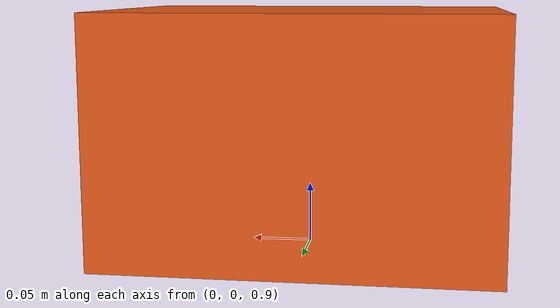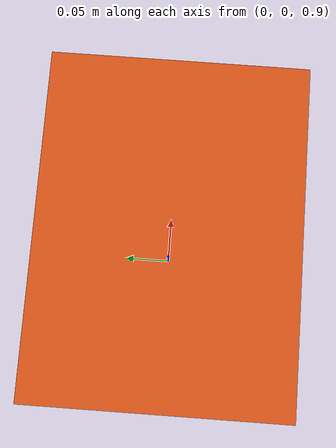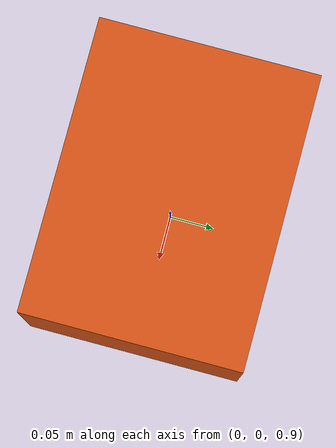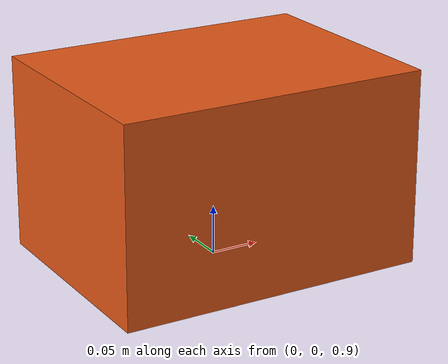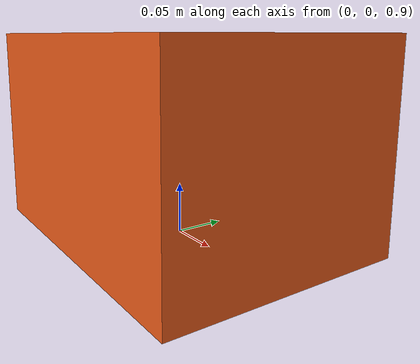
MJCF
<mujoco model="environment_smoke">
  <compiler angle="radian"/>
  <option timestep="0.002" integrator="implicitfast"/>

  <visual>
    <global offwidth="640" offheight="480"/>
    <headlight ambient="0.35 0.35 0.35" diffuse="0.65 0.65 0.65"/>
  </visual>

  <worldbody>
    <light pos="0 -2 3" dir="0 1 -1"/>
    <camera name="verification" pos="2.2 -2.2 1.6" xyaxes="0.707 0.707 0 -0.408 0.408 0.816"/>
    <geom name="ground" type="plane" size="3 3 0.1" rgba="0.25 0.3 0.35 1"/>

    <body name="drop_test_body" pos="0 0 1">
      <freejoint/>
      <geom type="box" size="0.16 0.12 0.1" mass="1"
            rgba="0.9 0.35 0.1 1" friction="1 0.01 0.001"/>
    </body>
  </worldbody>
</mujoco>
